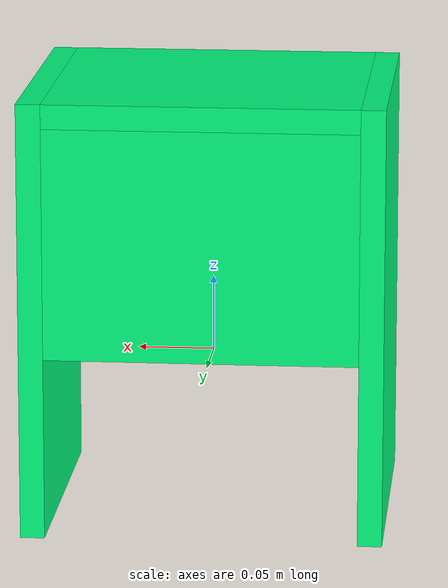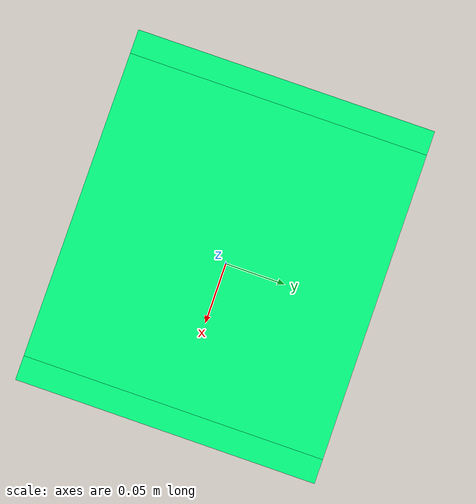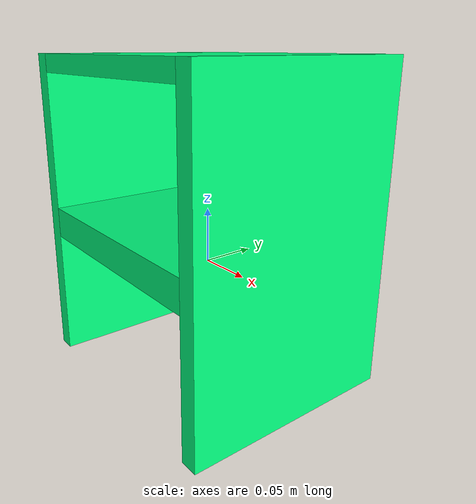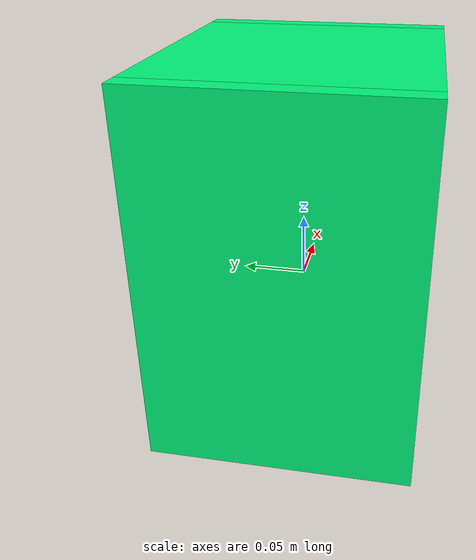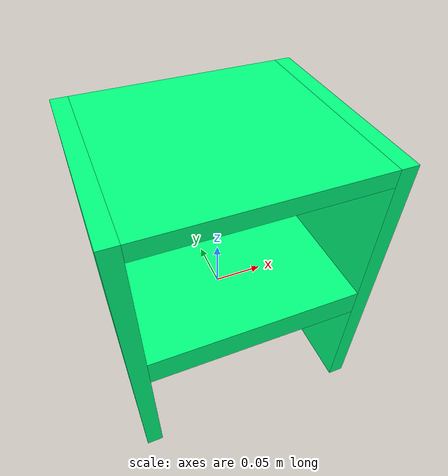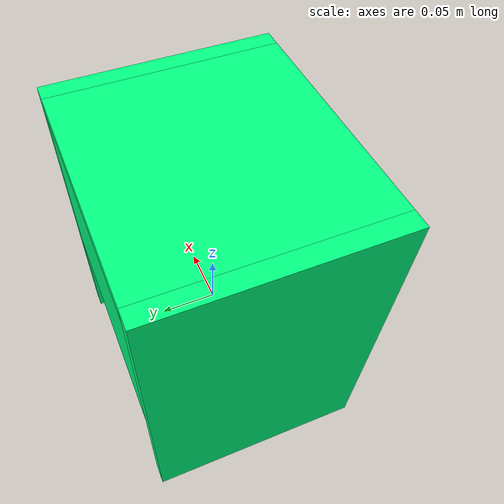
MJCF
<mujoco model="target_box">
    <worldbody>
        <body name="target_box" pos="0.0 0.0 0.0" quat="1 0 0 0">
            <geom name="target_box0" pos="-0.11 0 0.04" size="0.008 0.1 0.144" rgba="0 1 0.5 1.0" type="box" mass=".05" conaffinity="1" condim="4" contype="1"/>
            <geom name="target_box1" pos="0.11 0 0.04" size="0.008 0.1 0.144" rgba="0 1 0.5 1.0" type="box" mass=".05" conaffinity="1" condim="4" contype="1"/>
            <geom name="target_box2" pos="0 0.092 0.092" size="0.102 0.008 0.076" rgba="0 1 0.5 1.0" type="box" mass=".05" conaffinity="1" condim="4" contype="1"/>
            <geom name="target_box3" pos="0 -0.008 0.03" size="0.102 0.092 0.014" rgba="0 1 0.5 1.0" type="box" mass=".05" conaffinity="1" condim="4" contype="1"/>
            <geom name="target_box4" pos="0 0 0.176" size="0.102 0.1 0.008" rgba="0 1 0.5 1.0" type="box" mass=".05" conaffinity="1" condim="4" contype="1"/>
        </body>
    </worldbody>
</mujoco>
